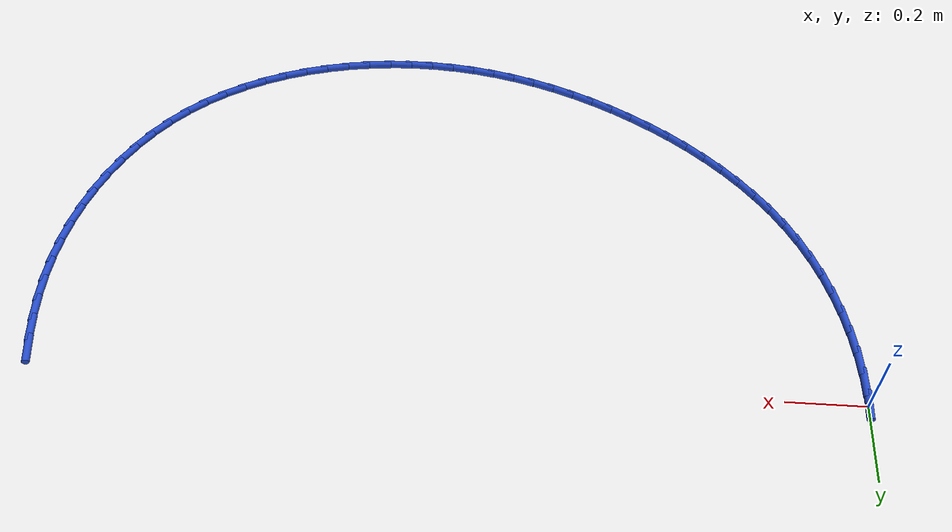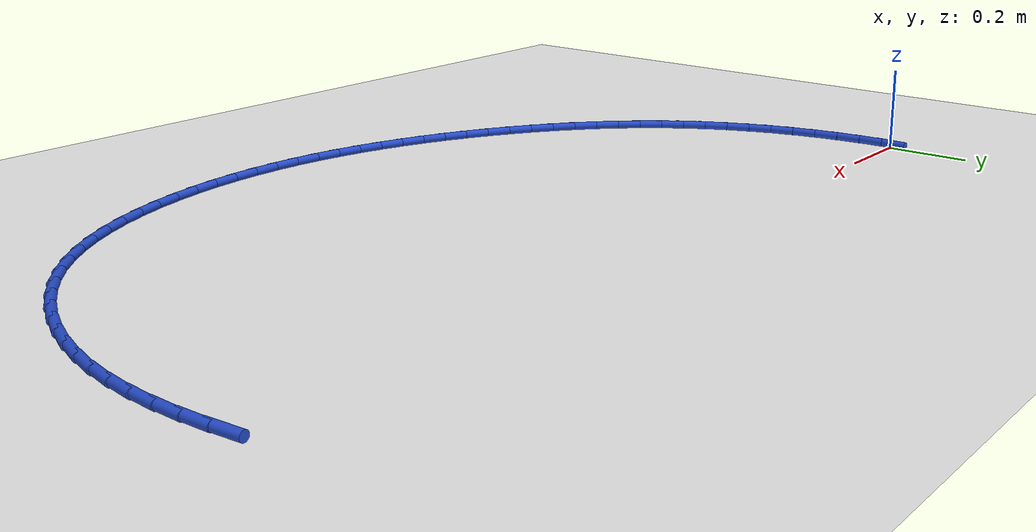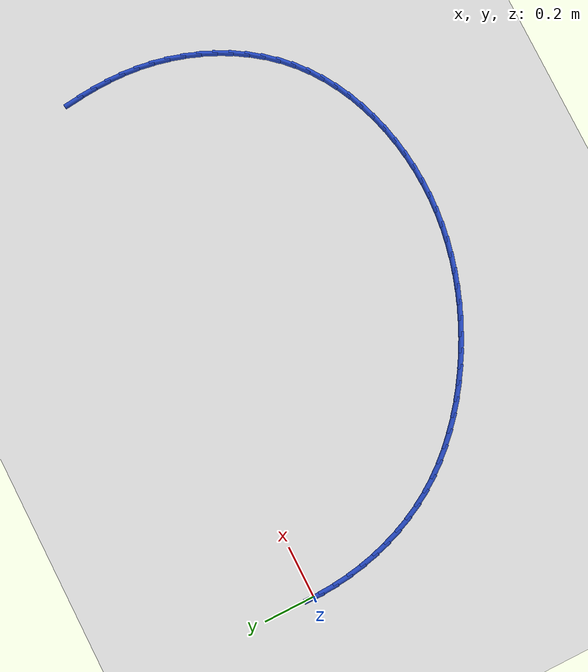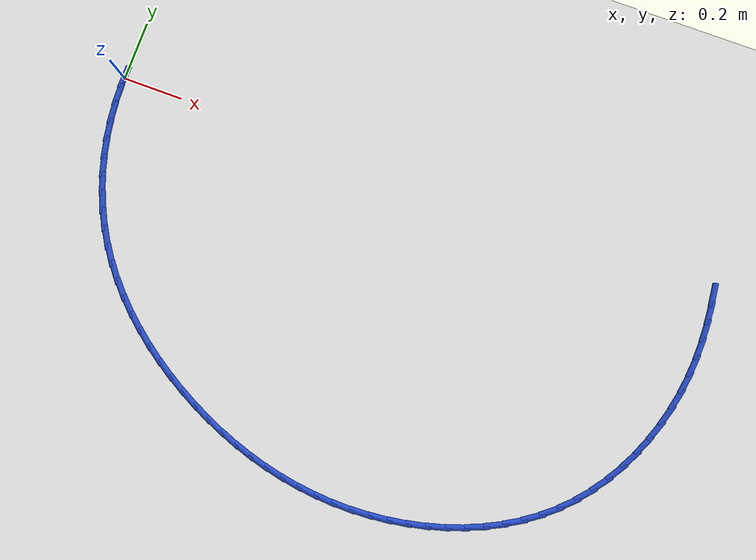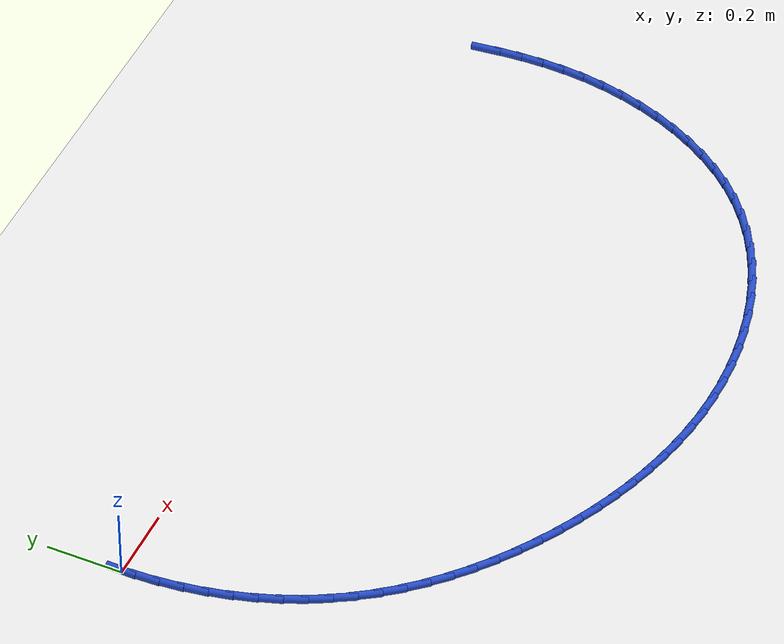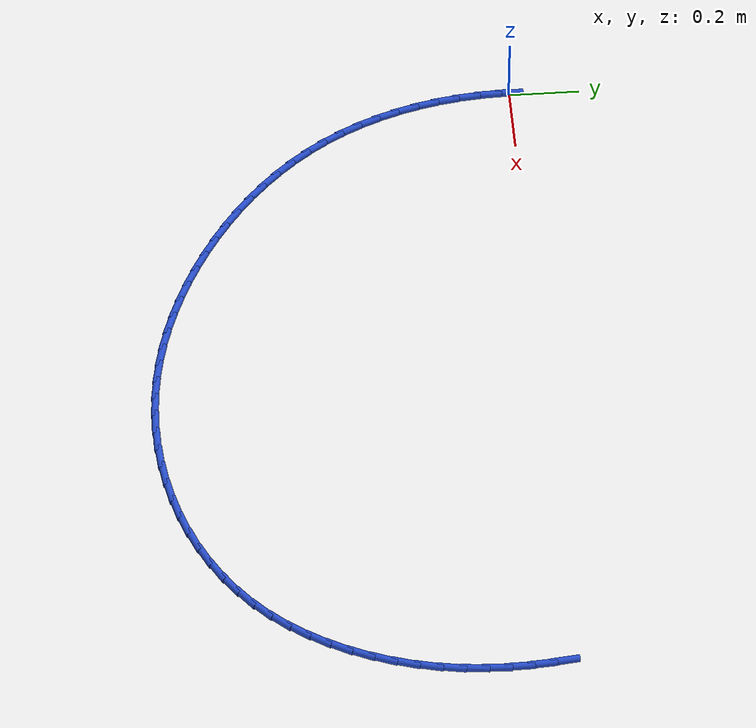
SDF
<sdf version="1.6">
 <world name="default">
  <model name="ground_plane">
   <static>1</static>
   <link name="link">
    <collision name="collision">
     <geometry><plane><normal>0 0 1</normal><size>100 100</size></plane></geometry>
     <surface><friction><ode><mu>100</mu><mu2>50</mu2></ode></friction></surface>
    </collision>
    <visual name="visual">
     <cast_shadows>0</cast_shadows>
     <geometry><plane><normal>0 0 1</normal><size>100 100</size></plane></geometry>
     <material>
      <script><uri>file://media/materials/scripts/gazebo.material</uri><name>Gazebo/WhiteGlow</name></script>
     </material>
    </visual>
   </link>
  </model>
  <model name="line">
   <link name="link_0">
    <pose>0.0 -1.3877787807814457e-17 0.01 0 1.57 1.5546685567163243</pose>
    <collision name="collision">
     <geometry><cylinder><radius>0.01</radius><length>0.08</length></cylinder></geometry>
    </collision>
    <visual name="visual">
     <material>
      <script><name>Gazebo/Blue</name><uri>file://media/materials/scripts/gazebo.material</uri></script>
     </material>
     <geometry><cylinder><radius>0.01</radius><length>0.08</length></cylinder></geometry>
    </visual>
   </link>
   <link name="link_55">
    <pose>2.055922677205452 -0.025623809796125045 0.01 0 1.57 -1.4571175292298124</pose>
    <collision name="collision">
     <geometry><cylinder><radius>0.01</radius><length>0.08</length></cylinder></geometry>
    </collision>
    <visual name="visual">
     <material>
      <script><name>Gazebo/Blue</name><uri>file://media/materials/scripts/gazebo.material</uri></script>
     </material>
     <geometry><cylinder><radius>0.01</radius><length>0.08</length></cylinder></geometry>
    </visual>
   </link>
   <link name="link_56">
    <pose>2.062707826878456 -0.08505350767582916 0.01 0 1.57 -1.5035714904815738</pose>
    <collision name="collision">
     <geometry><cylinder><radius>0.01</radius><length>0.08</length></cylinder></geometry>
    </collision>
    <visual name="visual">
     <material>
      <script><name>Gazebo/Blue</name><uri>file://media/materials/scripts/gazebo.material</uri></script>
     </material>
     <geometry><cylinder><radius>0.01</radius><length>0.08</length></cylinder></geometry>
    </visual>
   </link>
   <link name="link_57">
    <pose>2.066718612435814 -0.1446258642206877 0.01 0 1.57 -1.5553002532336873</pose>
    <collision name="collision">
     <geometry><cylinder><radius>0.01</radius><length>0.08</length></cylinder></geometry>
    </collision>
    <visual name="visual">
     <material>
      <script><name>Gazebo/Blue</name><uri>file://media/materials/scripts/gazebo.material</uri></script>
     </material>
     <geometry><cylinder><radius>0.01</radius><length>0.08</length></cylinder></geometry>
    </visual>
   </link>
   <link name="link_58">
    <pose>2.0676432787128944 -0.20429209253315522 0.01 0 1.57 1.5294005649089089</pose>
    <collision name="collision">
     <geometry><cylinder><radius>0.01</radius><length>0.08</length></cylinder></geometry>
    </collision>
    <visual name="visual">
     <material>
      <script><name>Gazebo/Blue</name><uri>file://media/materials/scripts/gazebo.material</uri></script>
     </material>
     <geometry><cylinder><radius>0.01</radius><length>0.08</length></cylinder></geometry>
    </visual>
   </link>
   <link name="link_59">
    <pose>2.065170070545067 -0.2640034057156888 0.01 0 1.57 1.467612815279909</pose>
    <collision name="collision">
     <geometry><cylinder><radius>0.01</radius><length>0.08</length></cylinder></geometry>
    </collision>
    <visual name="visual">
     <material>
      <script><name>Gazebo/Blue</name><uri>file://media/materials/scripts/gazebo.material</uri></script>
     </material>
     <geometry><cylinder><radius>0.01</radius><length>0.08</length></cylinder></geometry>
    </visual>
   </link>
   <link name="link_60">
    <pose>2.058987275864211 -0.3237109752451693 0.01 0 1.57 1.402442449837216</pose>
    <collision name="collision">
     <geometry><cylinder><radius>0.01</radius><length>0.08</length></cylinder></geometry>
    </collision>
    <visual name="visual">
     <material>
      <script><name>Gazebo/Blue</name><uri>file://media/materials/scripts/gazebo.material</uri></script>
     </material>
     <geometry><cylinder><radius>0.01</radius><length>0.08</length></cylinder></geometry>
    </visual>
   </link>
   <link name="link_61">
    <pose>2.048860913589019 -0.3832908946666972 0.01 0 1.57 1.3371386520161337</pose>
    <collision name="collision">
     <geometry><cylinder><radius>0.01</radius><length>0.08</length></cylinder></geometry>
    </collision>
    <visual name="visual">
     <material>
      <script><name>Gazebo/Blue</name><uri>file://media/materials/scripts/gazebo.material</uri></script>
     </material>
     <geometry><cylinder><radius>0.01</radius><length>0.08</length></cylinder></geometry>
    </visual>
   </link>
   <link name="link_62">
    <pose>2.034795239578538 -0.4423891519073874 0.01 0 1.57 1.2716414481758271</pose>
    <collision name="collision">
     <geometry><cylinder><radius>0.01</radius><length>0.08</length></cylinder></geometry>
    </collision>
    <visual name="visual">
     <material>
      <script><name>Gazebo/Blue</name><uri>file://media/materials/scripts/gazebo.material</uri></script>
     </material>
     <geometry><cylinder><radius>0.01</radius><length>0.08</length></cylinder></geometry>
    </visual>
   </link>
   <link name="link_63">
    <pose>2.0168399971400666 -0.5006077999891556 0.01 0 1.57 1.2052352636933323</pose>
    <collision name="collision">
     <geometry><cylinder><radius>0.01</radius><length>0.08</length></cylinder></geometry>
    </collision>
    <visual name="visual">
     <material>
      <script><name>Gazebo/Blue</name><uri>file://media/materials/scripts/gazebo.material</uri></script>
     </material>
     <geometry><cylinder><radius>0.01</radius><length>0.08</length></cylinder></geometry>
    </visual>
   </link>
   <link name="link_64">
    <pose>1.995044929580905 -0.5575488919339143 0.01 0 1.57 1.1372263370380797</pose>
    <collision name="collision">
     <geometry><cylinder><radius>0.01</radius><length>0.08</length></cylinder></geometry>
    </collision>
    <visual name="visual">
     <material>
      <script><name>Gazebo/Blue</name><uri>file://media/materials/scripts/gazebo.material</uri></script>
     </material>
     <geometry><cylinder><radius>0.01</radius><length>0.08</length></cylinder></geometry>
    </visual>
   </link>
   <link name="link_65">
    <pose>1.9694597802083522 -0.6128144807635787 0.01 0 1.57 1.0669460416500438</pose>
    <collision name="collision">
     <geometry><cylinder><radius>0.01</radius><length>0.08</length></cylinder></geometry>
    </collision>
    <visual name="visual">
     <material>
      <script><name>Gazebo/Blue</name><uri>file://media/materials/scripts/gazebo.material</uri></script>
     </material>
     <geometry><cylinder><radius>0.01</radius><length>0.08</length></cylinder></geometry>
    </visual>
   </link>
   <link name="link_66">
    <pose>1.9401342923297078 -0.6660066195000632 0.01 0 1.57 0.9937616409828153</pose>
    <collision name="collision">
     <geometry><cylinder><radius>0.01</radius><length>0.08</length></cylinder></geometry>
    </collision>
    <visual name="visual">
     <material>
      <script><name>Gazebo/Blue</name><uri>file://media/materials/scripts/gazebo.material</uri></script>
     </material>
     <geometry><cylinder><radius>0.01</radius><length>0.08</length></cylinder></geometry>
    </visual>
   </link>
   <link name="link_67">
    <pose>1.9071182092522716 -0.7167273611652809 0.01 0 1.57 0.9170972047348014</pose>
    <collision name="collision">
     <geometry><cylinder><radius>0.01</radius><length>0.08</length></cylinder></geometry>
    </collision>
    <visual name="visual">
     <material>
      <script><name>Gazebo/Blue</name><uri>file://media/materials/scripts/gazebo.material</uri></script>
     </material>
     <geometry><cylinder><radius>0.01</radius><length>0.08</length></cylinder></geometry>
    </visual>
   </link>
   <link name="link_68">
    <pose>1.870461274283342 -0.764578758781147 0.01 0 1.57 0.8364671605522698</pose>
    <collision name="collision">
     <geometry><cylinder><radius>0.01</radius><length>0.08</length></cylinder></geometry>
    </collision>
    <visual name="visual">
     <material>
      <script><name>Gazebo/Blue</name><uri>file://media/materials/scripts/gazebo.material</uri></script>
     </material>
     <geometry><cylinder><radius>0.01</radius><length>0.08</length></cylinder></geometry>
    </visual>
   </link>
   <link name="link_69">
    <pose>1.830213230730219 -0.8091628653695748 0.01 0 1.57 0.7520453369273918</pose>
    <collision name="collision">
     <geometry><cylinder><radius>0.01</radius><length>0.08</length></cylinder></geometry>
    </collision>
    <visual name="visual">
     <material>
      <script><name>Gazebo/Blue</name><uri>file://media/materials/scripts/gazebo.material</uri></script>
     </material>
     <geometry><cylinder><radius>0.01</radius><length>0.08</length></cylinder></geometry>
    </visual>
   </link>
   <link name="link_70">
    <pose>1.78644160674598 -0.8501079011156544 0.01 0 1.57 0.6689038071969079</pose>
    <collision name="collision">
     <geometry><cylinder><radius>0.01</radius><length>0.08</length></cylinder></geometry>
    </collision>
    <visual name="visual">
     <material>
      <script><name>Gazebo/Blue</name><uri>file://media/materials/scripts/gazebo.material</uri></script>
     </material>
     <geometry><cylinder><radius>0.01</radius><length>0.08</length></cylinder></geometry>
    </visual>
   </link>
   <link name="link_71">
    <pose>1.7393898736212394 -0.887300954504312 0.01 0 1.57 0.5900853439338986</pose>
    <collision name="collision">
     <geometry><cylinder><radius>0.01</radius><length>0.08</length></cylinder></geometry>
    </collision>
    <visual name="visual">
     <material>
      <script><name>Gazebo/Blue</name><uri>file://media/materials/scripts/gazebo.material</uri></script>
     </material>
     <geometry><cylinder><radius>0.01</radius><length>0.08</length></cylinder></geometry>
    </visual>
   </link>
   <link name="link_72">
    <pose>1.6894019154486815 -0.9207768531805095 0.01 0 1.57 0.5155556063367246</pose>
    <collision name="collision">
     <geometry><cylinder><radius>0.01</radius><length>0.08</length></cylinder></geometry>
    </collision>
    <visual name="visual">
     <material>
      <script><name>Gazebo/Blue</name><uri>file://media/materials/scripts/gazebo.material</uri></script>
     </material>
     <geometry><cylinder><radius>0.01</radius><length>0.08</length></cylinder></geometry>
    </visual>
   </link>
   <link name="link_73">
    <pose>1.6368227888563347 -0.9505721499615295 0.01 0 1.57 0.4450730816553852</pose>
    <collision name="collision">
     <geometry><cylinder><radius>0.01</radius><length>0.08</length></cylinder></geometry>
    </collision>
    <visual name="visual">
     <material>
      <script><name>Gazebo/Blue</name><uri>file://media/materials/scripts/gazebo.material</uri></script>
     </material>
     <geometry><cylinder><radius>0.01</radius><length>0.08</length></cylinder></geometry>
    </visual>
   </link>
   <link name="link_74">
    <pose>1.5819975504722268 -0.9767233976646577 0.01 0 1.57 0.3782739879604526</pose>
    <collision name="collision">
     <geometry><cylinder><radius>0.01</radius><length>0.08</length></cylinder></geometry>
    </collision>
    <visual name="visual">
     <material>
      <script><name>Gazebo/Blue</name><uri>file://media/materials/scripts/gazebo.material</uri></script>
     </material>
     <geometry><cylinder><radius>0.01</radius><length>0.08</length></cylinder></geometry>
    </visual>
   </link>
   <link name="link_75">
    <pose>1.5252712569243885 -0.9992671491071773 0.01 0 1.57 0.31471388224114377</pose>
    <collision name="collision">
     <geometry><cylinder><radius>0.01</radius><length>0.08</length></cylinder></geometry>
    </collision>
    <visual name="visual">
     <material>
      <script><name>Gazebo/Blue</name><uri>file://media/materials/scripts/gazebo.material</uri></script>
     </material>
     <geometry><cylinder><radius>0.01</radius><length>0.08</length></cylinder></geometry>
    </visual>
   </link>
   <link name="link_76">
    <pose>1.466988964840847 -1.0182399571063732 0.01 0 1.57 0.25389845114186654</pose>
    <collision name="collision">
     <geometry><cylinder><radius>0.01</radius><length>0.08</length></cylinder></geometry>
    </collision>
    <visual name="visual">
     <material>
      <script><name>Gazebo/Blue</name><uri>file://media/materials/scripts/gazebo.material</uri></script>
     </material>
     <geometry><cylinder><radius>0.01</radius><length>0.08</length></cylinder></geometry>
    </visual>
   </link>
   <link name="link_77">
    <pose>1.4074957308496328 -1.0336783744795293 0.01 0 1.57 0.19530392827451648</pose>
    <collision name="collision">
     <geometry><cylinder><radius>0.01</radius><length>0.08</length></cylinder></geometry>
    </collision>
    <visual name="visual">
     <material>
      <script><name>Gazebo/Blue</name><uri>file://media/materials/scripts/gazebo.material</uri></script>
     </material>
     <geometry><cylinder><radius>0.01</radius><length>0.08</length></cylinder></geometry>
    </visual>
   </link>
   <link name="link_78">
    <pose>1.3471366115787726 -1.0456189540439296 0.01 0 1.57 0.1383886720131679</pose>
    <collision name="collision">
     <geometry><cylinder><radius>0.01</radius><length>0.08</length></cylinder></geometry>
    </collision>
    <visual name="visual">
     <material>
      <script><name>Gazebo/Blue</name><uri>file://media/materials/scripts/gazebo.material</uri></script>
     </material>
     <geometry><cylinder><radius>0.01</radius><length>0.08</length></cylinder></geometry>
    </visual>
   </link>
   <link name="link_79">
    <pose>1.2862566636562978 -1.0540982486168586 0.01 0 1.57 0.08259770672788885</pose>
    <collision name="collision">
     <geometry><cylinder><radius>0.01</radius><length>0.08</length></cylinder></geometry>
    </collision>
    <visual name="visual">
     <material>
      <script><name>Gazebo/Blue</name><uri>file://media/materials/scripts/gazebo.material</uri></script>
     </material>
     <geometry><cylinder><radius>0.01</radius><length>0.08</length></cylinder></geometry>
    </visual>
   </link>
   <link name="link_80">
    <pose>1.2252009437102347 -1.0591528110156005 0.01 0 1.57 0.027369064461906477</pose>
    <collision name="collision">
     <geometry><cylinder><radius>0.01</radius><length>0.08</length></cylinder></geometry>
    </collision>
    <visual name="visual">
     <material>
      <script><name>Gazebo/Blue</name><uri>file://media/materials/scripts/gazebo.material</uri></script>
     </material>
     <geometry><cylinder><radius>0.01</radius><length>0.08</length></cylinder></geometry>
    </visual>
   </link>
   <link name="link_81">
    <pose>1.1643123691590194 -1.0608196905590301 0.01 0 1.57 -0.027408028715786636</pose>
    <collision name="collision">
     <geometry><cylinder><radius>0.01</radius><length>0.08</length></cylinder></geometry>
    </collision>
    <visual name="visual">
     <material>
      <script><name>Gazebo/Blue</name><uri>file://media/materials/scripts/gazebo.material</uri></script>
     </material>
     <geometry><cylinder><radius>0.01</radius><length>0.08</length></cylinder></geometry>
    </visual>
   </link>
   <link name="link_82">
    <pose>1.1038240989092436 -1.0591614110570513 0.01 0 1.57 -0.08119619763734348</pose>
    <collision name="collision">
     <geometry><cylinder><radius>0.01</radius><length>0.08</length></cylinder></geometry>
    </collision>
    <visual name="visual">
     <material>
      <script><name>Gazebo/Blue</name><uri>file://media/materials/scripts/gazebo.material</uri></script>
     </material>
     <geometry><cylinder><radius>0.01</radius><length>0.08</length></cylinder></geometry>
    </visual>
   </link>
   <link name="link_83">
    <pose>1.0438090747089472 -1.0542776820512285 0.01 0 1.57 -0.13380101496931707</pose>
    <collision name="collision">
     <geometry><cylinder><radius>0.01</radius><length>0.08</length></cylinder></geometry>
    </collision>
    <visual name="visual">
     <material>
      <script><name>Gazebo/Blue</name><uri>file://media/materials/scripts/gazebo.material</uri></script>
     </material>
     <geometry><cylinder><radius>0.01</radius><length>0.08</length></cylinder></geometry>
    </visual>
   </link>
   <link name="link_84">
    <pose>0.9843275525585696 -1.0462711573920271 0.01 0 1.57 -0.18510532441484695</pose>
    <collision name="collision">
     <geometry><cylinder><radius>0.01</radius><length>0.08</length></cylinder></geometry>
    </collision>
    <visual name="visual">
     <material>
      <script><name>Gazebo/Blue</name><uri>file://media/materials/scripts/gazebo.material</uri></script>
     </material>
     <geometry><cylinder><radius>0.01</radius><length>0.08</length></cylinder></geometry>
    </visual>
   </link>
   <link name="link_85">
    <pose>0.9254397884585487 -1.035244490929912 0.01 0 1.57 -0.23502621790308398</pose>
    <collision name="collision">
     <geometry><cylinder><radius>0.01</radius><length>0.08</length></cylinder></geometry>
    </collision>
    <visual name="visual">
     <material>
      <script><name>Gazebo/Blue</name><uri>file://media/materials/scripts/gazebo.material</uri></script>
     </material>
     <geometry><cylinder><radius>0.01</radius><length>0.08</length></cylinder></geometry>
    </visual>
   </link>
   <link name="link_86">
    <pose>0.8672060384093253 -1.0213003365153501 0.01 0 1.57 -0.2835132699299637</pose>
    <collision name="collision">
     <geometry><cylinder><radius>0.01</radius><length>0.08</length></cylinder></geometry>
    </collision>
    <visual name="visual">
     <material>
      <script><name>Gazebo/Blue</name><uri>file://media/materials/scripts/gazebo.material</uri></script>
     </material>
     <geometry><cylinder><radius>0.01</radius><length>0.08</length></cylinder></geometry>
    </visual>
   </link>
   <link name="link_87">
    <pose>0.8096865584113365 -1.0045413479988057 0.01 0 1.57 -0.3305457905208196</pose>
    <collision name="collision">
     <geometry><cylinder><radius>0.01</radius><length>0.08</length></cylinder></geometry>
    </collision>
    <visual name="visual">
     <material>
      <script><name>Gazebo/Blue</name><uri>file://media/materials/scripts/gazebo.material</uri></script>
     </material>
     <geometry><cylinder><radius>0.01</radius><length>0.08</length></cylinder></geometry>
    </visual>
   </link>
   <link name="link_88">
    <pose>0.7529416044650228 -0.9850701792307448 0.01 0 1.57 -0.37612946862075286</pose>
    <collision name="collision">
     <geometry><cylinder><radius>0.01</radius><length>0.08</length></cylinder></geometry>
    </collision>
    <visual name="visual">
     <material>
      <script><name>Gazebo/Blue</name><uri>file://media/materials/scripts/gazebo.material</uri></script>
     </material>
     <geometry><cylinder><radius>0.01</radius><length>0.08</length></cylinder></geometry>
    </visual>
   </link>
   <link name="link_89">
    <pose>0.6970314325708221 -0.9629894840616329 0.01 0 1.57 -0.42029273789316546</pose>
    <collision name="collision">
     <geometry><cylinder><radius>0.01</radius><length>0.08</length></cylinder></geometry>
    </collision>
    <visual name="visual">
     <material>
      <script><name>Gazebo/Blue</name><uri>file://media/materials/scripts/gazebo.material</uri></script>
     </material>
     <geometry><cylinder><radius>0.01</radius><length>0.08</length></cylinder></geometry>
    </visual>
   </link>
   <link name="link_90">
    <pose>0.6420162987291743 -0.9384019163419354 0.01 0 1.57 -0.4630831347694069</pose>
    <collision name="collision">
     <geometry><cylinder><radius>0.01</radius><length>0.08</length></cylinder></geometry>
    </collision>
    <visual name="visual">
     <material>
      <script><name>Gazebo/Blue</name><uri>file://media/materials/scripts/gazebo.material</uri></script>
     </material>
     <geometry><cylinder><radius>0.01</radius><length>0.08</length></cylinder></geometry>
    </visual>
   </link>
   <link name="link_91">
    <pose>0.5879564589405175 -0.9114101299221181 0.01 0 1.57 -0.5049456417332265</pose>
    <collision name="collision">
     <geometry><cylinder><radius>0.01</radius><length>0.08</length></cylinder></geometry>
    </collision>
    <visual name="visual">
     <material>
      <script><name>Gazebo/Blue</name><uri>file://media/materials/scripts/gazebo.material</uri></script>
     </material>
     <geometry><cylinder><radius>0.01</radius><length>0.08</length></cylinder></geometry>
    </visual>
   </link>
   <link name="link_92">
    <pose>0.5349378419301292 -0.8821045352368069 0.01 0 1.57 -0.5478819920691976</pose>
    <collision name="collision">
     <geometry><cylinder><radius>0.01</radius><length>0.08</length></cylinder></geometry>
    </collision>
    <visual name="visual">
     <material>
      <script><name>Gazebo/Blue</name><uri>file://media/materials/scripts/gazebo.material</uri></script>
     </material>
     <geometry><cylinder><radius>0.01</radius><length>0.08</length></cylinder></geometry>
    </visual>
   </link>
   <link name="link_93">
    <pose>0.4831704785371467 -0.8505163579712018 0.01 0 1.57 -0.5927386102014548</pose>
    <collision name="collision">
     <geometry><cylinder><radius>0.01</radius><length>0.08</length></cylinder></geometry>
    </collision>
    <visual name="visual">
     <material>
      <script><name>Gazebo/Blue</name><uri>file://media/materials/scripts/gazebo.material</uri></script>
     </material>
     <geometry><cylinder><radius>0.01</radius><length>0.08</length></cylinder></geometry>
    </visual>
   </link>
   <link name="link_94">
    <pose>0.43290184912888086 -0.8166589639943256 0.01 0 1.57 -0.6398168681654943</pose>
    <collision name="collision">
     <geometry><cylinder><radius>0.01</radius><length>0.08</length></cylinder></geometry>
    </collision>
    <visual name="visual">
     <material>
      <script><name>Gazebo/Blue</name><uri>file://media/materials/scripts/gazebo.material</uri></script>
     </material>
     <geometry><cylinder><radius>0.01</radius><length>0.08</length></cylinder></geometry>
    </visual>
   </link>
   <link name="link_95">
    <pose>0.38437944186903794 -0.780545715457069 0.01 0 1.57 -0.6894107242320997</pose>
    <collision name="collision">
     <geometry><cylinder><radius>0.01</radius><length>0.08</length></cylinder></geometry>
    </collision>
    <visual name="visual">
     <material>
      <script><name>Gazebo/Blue</name><uri>file://media/materials/scripts/gazebo.material</uri></script>
     </material>
     <geometry><cylinder><radius>0.01</radius><length>0.08</length></cylinder></geometry>
    </visual>
   </link>
   <link name="link_96">
    <pose>0.3378507449213272 -0.7421899745103239 0.01 0 1.57 -0.7417999818354502</pose>
    <collision name="collision">
     <geometry><cylinder><radius>0.01</radius><length>0.08</length></cylinder></geometry>
    </collision>
    <visual name="visual">
     <material>
      <script><name>Gazebo/Blue</name><uri>file://media/materials/scripts/gazebo.material</uri></script>
     </material>
     <geometry><cylinder><radius>0.01</radius><length>0.08</length></cylinder></geometry>
    </visual>
   </link>
   <link name="link_97">
    <pose>0.29356324644945575 -0.7016051033049818 0.01 0 1.57 -0.797239619119466</pose>
    <collision name="collision">
     <geometry><cylinder><radius>0.01</radius><length>0.08</length></cylinder></geometry>
    </collision>
    <visual name="visual">
     <material>
      <script><name>Gazebo/Blue</name><uri>file://media/materials/scripts/gazebo.material</uri></script>
     </material>
     <geometry><cylinder><radius>0.01</radius><length>0.08</length></cylinder></geometry>
    </visual>
   </link>
   <link name="link_98">
    <pose>0.2517644346171308 -0.6588044639919332 0.01 0 1.57 -0.8559447885362179</pose>
    <collision name="collision">
     <geometry><cylinder><radius>0.01</radius><length>0.08</length></cylinder></geometry>
    </collision>
    <visual name="visual">
     <material>
      <script><name>Gazebo/Blue</name><uri>file://media/materials/scripts/gazebo.material</uri></script>
     </material>
     <geometry><cylinder><radius>0.01</radius><length>0.08</length></cylinder></geometry>
    </visual>
   </link>
   <link name="link_99">
    <pose>0.2127017975880611 -0.6138014187220705 0.01 0 1.57 -0.9180713034027332</pose>
    <collision name="collision">
     <geometry><cylinder><radius>0.01</radius><length>0.08</length></cylinder></geometry>
    </collision>
    <visual name="visual">
     <material>
      <script><name>Gazebo/Blue</name><uri>file://media/materials/scripts/gazebo.material</uri></script>
     </material>
     <geometry><cylinder><radius>0.01</radius><length>0.08</length></cylinder></geometry>
    </visual>
   </link>
   <link name="link_100">
    <pose>0.17662282352595363 -0.5666093296462843 0.01 0 1.57 -0.9836078530535247</pose>
    <collision name="collision">
     <geometry><cylinder><radius>0.01</radius><length>0.08</length></cylinder></geometry>
    </collision>
    <visual name="visual">
     <material>
      <script><name>Gazebo/Blue</name><uri>file://media/materials/scripts/gazebo.material</uri></script>
     </material>
     <geometry><cylinder><radius>0.01</radius><length>0.08</length></cylinder></geometry>
    </visual>
   </link>
   <link name="link_101">
    <pose>0.14377083536975607 -0.5172443173181298 0.01 0 1.57 -1.0502668847903542</pose>
    <collision name="collision">
     <geometry><cylinder><radius>0.01</radius><length>0.08</length></cylinder></geometry>
    </collision>
    <visual name="visual">
     <material>
      <script><name>Gazebo/Blue</name><uri>file://media/materials/scripts/gazebo.material</uri></script>
     </material>
     <geometry><cylinder><radius>0.01</radius><length>0.08</length></cylinder></geometry>
    </visual>
   </link>
   <link name="link_102">
    <pose>0.11427754988784875 -0.4657964130104536 0.01 0 1.57 -1.11552265654007</pose>
    <collision name="collision">
     <geometry><cylinder><radius>0.01</radius><length>0.08</length></cylinder></geometry>
    </collision>
    <visual name="visual">
     <material>
      <script><name>Gazebo/Blue</name><uri>file://media/materials/scripts/gazebo.material</uri></script>
     </material>
     <geometry><cylinder><radius>0.01</radius><length>0.08</length></cylinder></geometry>
    </visual>
   </link>
   <link name="link_103">
    <pose>0.08815351908772212 -0.41243588885183 0.01 0 1.57 -1.1792190837463625</pose>
    <collision name="collision">
     <geometry><cylinder><radius>0.01</radius><length>0.08</length></cylinder></geometry>
    </collision>
    <visual name="visual">
     <material>
      <script><name>Gazebo/Blue</name><uri>file://media/materials/scripts/gazebo.material</uri></script>
     </material>
     <geometry><cylinder><radius>0.01</radius><length>0.08</length></cylinder></geometry>
    </visual>
   </link>
   <link name="link_104">
    <pose>0.06540321398631992 -0.35733704408136613 0.01 0 1.57 -1.2413703127110427</pose>
    <collision name="collision">
     <geometry><cylinder><radius>0.01</radius><length>0.08</length></cylinder></geometry>
    </collision>
    <visual name="visual">
     <material>
      <script><name>Gazebo/Blue</name><uri>file://media/materials/scripts/gazebo.material</uri></script>
     </material>
     <geometry><cylinder><radius>0.01</radius><length>0.08</length></cylinder></geometry>
    </visual>
   </link>
   <link name="link_105">
    <pose>0.04603110560058679 -0.30067417793817103 0.01 0 1.57 -1.3020301318717726</pose>
    <collision name="collision">
     <geometry><cylinder><radius>0.01</radius><length>0.08</length></cylinder></geometry>
    </collision>
    <visual name="visual">
     <material>
      <script><name>Gazebo/Blue</name><uri>file://media/materials/scripts/gazebo.material</uri></script>
     </material>
     <geometry><cylinder><radius>0.01</radius><length>0.08</length></cylinder></geometry>
    </visual>
   </link>
   <link name="link_106">
    <pose>0.030041664947466486 -0.24262158966135147 0.01 0 1.57 -1.3612842181604685</pose>
    <collision name="collision">
     <geometry><cylinder><radius>0.01</radius><length>0.08</length></cylinder></geometry>
    </collision>
    <visual name="visual">
     <material>
      <script><name>Gazebo/Blue</name><uri>file://media/materials/scripts/gazebo.material</uri></script>
     </material>
     <geometry><cylinder><radius>0.01</radius><length>0.08</length></cylinder></geometry>
    </visual>
   </link>
   <link name="link_107">
    <pose>0.01743936304390359 -0.18335357849001716 0.01 0 1.57 -1.4192427455827734</pose>
    <collision name="collision">
     <geometry><cylinder><radius>0.01</radius><length>0.08</length></cylinder></geometry>
    </collision>
    <visual name="visual">
     <material>
      <script><name>Gazebo/Blue</name><uri>file://media/materials/scripts/gazebo.material</uri></script>
     </material>
     <geometry><cylinder><radius>0.01</radius><length>0.08</length></cylinder></geometry>
    </visual>
   </link>
   <link name="link_108">
    <pose>0.008228670906841989 -0.12304444366327455 0.01 0 1.57 -1.4760336781166445</pose>
    <collision name="collision">
     <geometry><cylinder><radius>0.01</radius><length>0.08</length></cylinder></geometry>
    </collision>
    <visual name="visual">
     <material>
      <script><name>Gazebo/Blue</name><uri>file://media/materials/scripts/gazebo.material</uri></script>
     </material>
     <geometry><cylinder><radius>0.01</radius><length>0.08</length></cylinder></geometry>
    </visual>
   </link>
   <link name="link_109">
    <pose>0.002414059553226114 -0.06186848442023328 0.01 0 1.57 -1.5317968982587986</pose>
    <collision name="collision">
     <geometry><cylinder><radius>0.01</radius><length>0.08</length></cylinder></geometry>
    </collision>
    <visual name="visual">
     <material>
      <script><name>Gazebo/Blue</name><uri>file://media/materials/scripts/gazebo.material</uri></script>
     </material>
     <geometry><cylinder><radius>0.01</radius><length>0.08</length></cylinder></geometry>
    </visual>
   </link>
  </model>
 </world>
</sdf>
